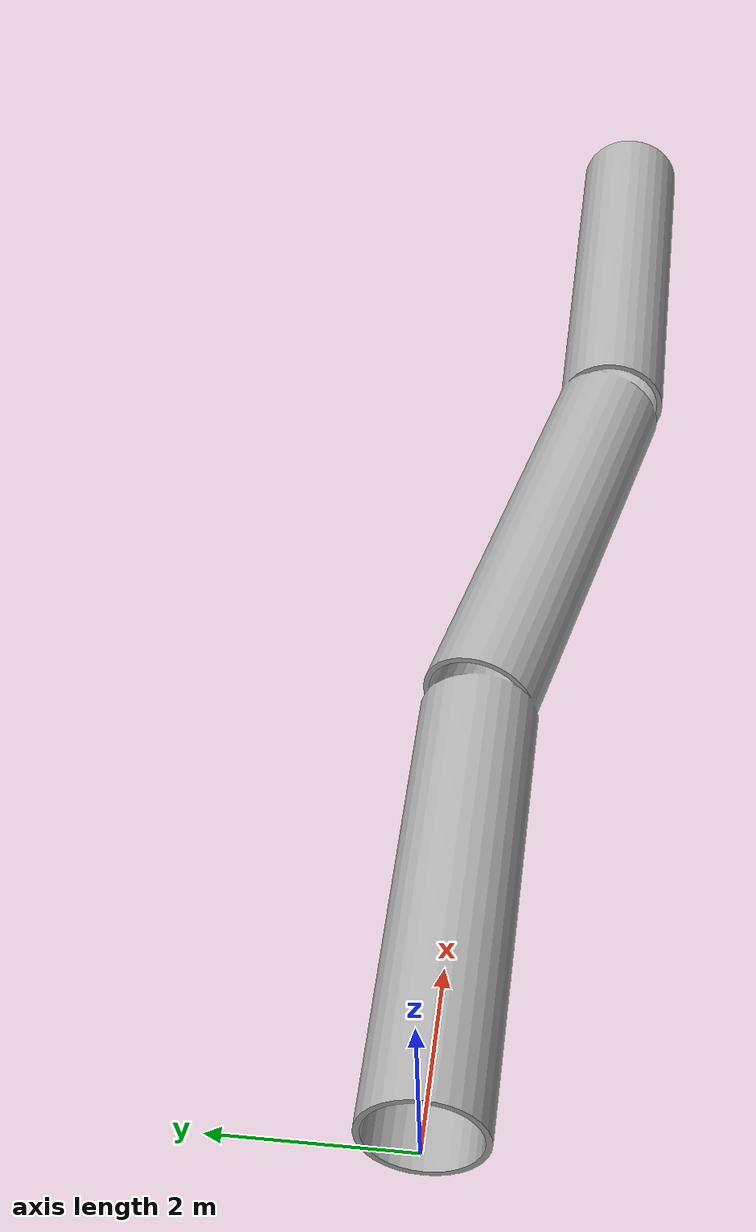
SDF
<?xml version="1.0"?>
<sdf version="1.6">
    <model name="tube">
      <static>true</static>
      <pose>0 0 0 0 0 0</pose>
      <link name="tube_link">

        <visual name="visual-2">
          <geometry>
            <mesh>
              <uri>real_life.stl</uri>
            </mesh>
          </geometry>
          <material>
            <ambient>0.7 0.7 0.7 1</ambient>
            <diffuse>0.7 0.7 0.7 1</diffuse>
            <specular>0.5 0.5 0.5 1</specular>
          </material>
        </visual>

        <collision name="collision-2">
          <geometry>
            <mesh>
              <uri>real_life.stl</uri>
            </mesh>
          </geometry>
          <surface>
            <friction>
              <ode>
                <mu>0.0</mu>      <!-- Coefficient of friction (0 = frictionless) -->
                <mu2>0.0</mu2>    <!-- Secondary friction coefficient -->
                <slip1>1.0</slip1>  <!-- Force-dependent slip direction 1 -->
                <slip2>1.0</slip2>  <!-- Force-dependent slip direction 2 -->
              </ode>
            </friction>
            <contact>
              <ode>
                <kp>1000000.0</kp>  <!-- Contact stiffness -->
                <kd>1.0</kd>         <!-- Contact damping -->
                <min_depth>0.001</min_depth>
              </ode>
            </contact>
          </surface>
        </collision>
      </link>
    </model>
</sdf>
